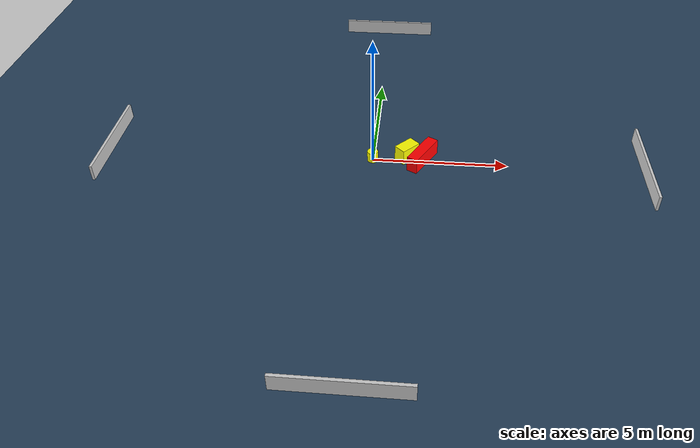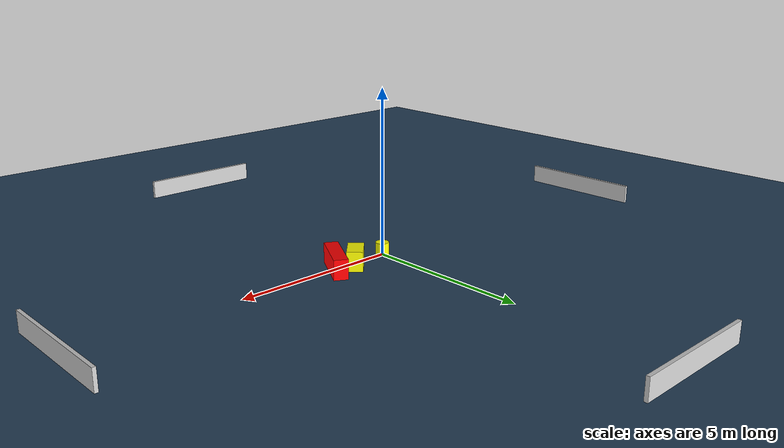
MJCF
<?xml version="1.0" ?>
<mujoco model="generated_environment">
  <option timestep="0.01" integrator="RK4" cone="elliptic"/>
  <default>
    <geom density="1"/>
  </default>
  <asset>
    <texture builtin="gradient" height="3072" name="skybox" rgb1="0.3 0.5 0.7" rgb2="0 0 0" type="skybox" width="512"/>
    <texture builtin="checker" height="300" name="groundplane" rgb1="0.2 0.3 0.4" rgb2="0.1 0.2 0.3" type="2d" width="300"/>
    <material name="groundplane" reflectance="0.2" texrepeat="5 5" texture="groundplane"/>
  </asset>
  <worldbody>
    <light dir="0 0 -1" directional="true" pos="0 0 1.5"/>
    <geom condim="3" friction="0.5 0.005 0.001" material="groundplane" name="floor" pos="0 0 0" size="0 0 0.05" type="plane"/>
    <body name="walls">
      <geom name="wall_1" condim="4" pos="-10.0 0.0 0.3" rgba="0.800000011920929 0.800000011920929 0.800000011920929 1.0" size="0.05 2.0 0.3" type="box"/>
      <geom name="wall_2" condim="4" pos="10.0 0.0 0.3" rgba="0.800000011920929 0.800000011920929 0.800000011920929 1.0" size="0.05 2.0 0.3" type="box"/>
      <geom name="wall_3" condim="4" pos="0.0 -10.0 0.3" rgba="0.800000011920929 0.800000011920929 0.800000011920929 1.0" size="2.0 0.05 0.3" type="box"/>
      <geom name="wall_4" condim="4" pos="0.0 10.0 0.3" rgba="0.800000011920929 0.800000011920929 0.800000011920929 1.0" size="2.0 0.05 0.3" type="box"/>
    </body>
    <body name="robot">
      <joint name="joint_x" type="slide" pos="0 0 0" axis="1 0 0"/>
      <joint name="joint_y" type="slide" pos="0 0 0" axis="0 1 0"/>
      <geom name="robot" type="cylinder" pos="0.0 0.0 0.2" size="0.2 0.2 0.0" mass="5.0" friction="1.0 0.005 0.0001" condim="4" rgba="1.0 1.0 0.0 1.0"/>
    </body>
    <body name="obstacle_1_movable">
      <geom name="obstacle_1_movable" condim="4" pos="1.2734073371797119 0.23817732339893957 0.3" euler="0 0 225.82395059459895" friction="0.0 0.005 0.001" rgba="1.0 1.0 0.0 1.0" size="0.39966302618338134 0.23736016323901427 0.3" type="box" mass="0.1"/>
      <joint type="free"/>
    </body>
    <body name="obstacle_2_static">
      <geom name="obstacle_2_static" condim="4" pos="1.8545339691632183 0.05958932970707748 0.3" euler="0 0 150.76683142988875" friction="0.0 0.005 0.001" rgba="1.0 0.0 0.0 1.0" size="0.2095378389868231 0.7582005000502763 0.3" type="box"/>
    </body>
  </worldbody>
  <actuator>
    <motor name="actuator_x" joint="joint_x" gear="1" ctrlrange="-1 1"/>
    <motor name="actuator_y" joint="joint_y" gear="1" ctrlrange="-1 1"/>
  </actuator>
</mujoco>
